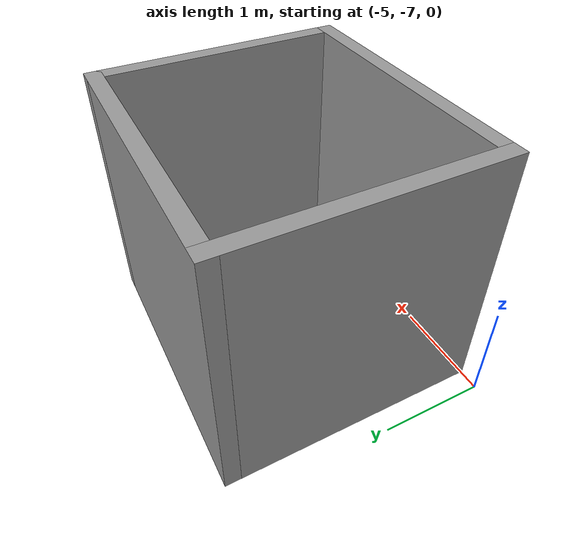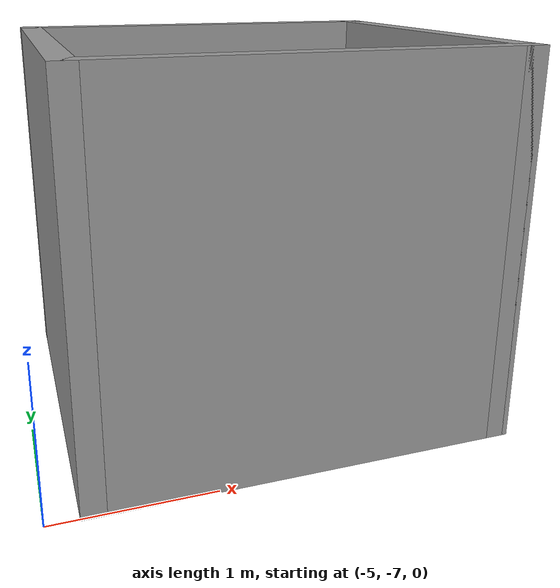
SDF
<?xml version='1.0'?>
<sdf version='1.7'>
  <model name='testtt'>
    <pose>-2.4025 -3.5075 0 0 -0 0</pose>
    <link name='Wall_15'>
      <collision name='Wall_15_Collision'>
        <geometry>
          <box>
            <size>2.5 0.15 2.5</size>
          </box>
        </geometry>
        <pose>0 0 1.25 0 -0 0</pose>
      </collision>
      <visual name='Wall_15_Visual'>
        <pose>0 0 1.25 0 -0 0</pose>
        <geometry>
          <box>
            <size>2.5 0.15 2.5</size>
          </box>
        </geometry>
        <material>
          <script>
            <uri>file://media/materials/scripts/gazebo.material</uri>
            <name>Gazebo/Grey</name>
          </script>
          <ambient>1 1 1 1</ambient>
        </material>
        <meta>
          <layer>0</layer>
        </meta>
      </visual>
      <pose>-2.3275 -2.2575 0 0 -0 -1.5708</pose>
    </link>
    <link name='Wall_16'>
      <collision name='Wall_16_Collision'>
        <geometry>
          <box>
            <size>2.75 0.15 2.5</size>
          </box>
        </geometry>
        <pose>0 0 1.25 0 -0 0</pose>
      </collision>
      <visual name='Wall_16_Visual'>
        <pose>0 0 1.25 0 -0 0</pose>
        <geometry>
          <box>
            <size>2.75 0.15 2.5</size>
          </box>
        </geometry>
        <material>
          <script>
            <uri>file://media/materials/scripts/gazebo.material</uri>
            <name>Gazebo/Grey</name>
          </script>
          <ambient>1 1 1 1</ambient>
        </material>
        <meta>
          <layer>0</layer>
        </meta>
      </visual>
      <pose>-1.0275 -3.4325 0 0 -0 0</pose>
    </link>
    <link name='Wall_17'>
      <collision name='Wall_17_Collision'>
        <geometry>
          <box>
            <size>2.5 0.15 2.5</size>
          </box>
        </geometry>
        <pose>0 0 1.25 0 -0 0</pose>
      </collision>
      <visual name='Wall_17_Visual'>
        <pose>0 0 1.25 0 -0 0</pose>
        <geometry>
          <box>
            <size>2.5 0.15 2.5</size>
          </box>
        </geometry>
        <material>
          <script>
            <uri>file://media/materials/scripts/gazebo.material</uri>
            <name>Gazebo/Grey</name>
          </script>
          <ambient>1 1 1 1</ambient>
        </material>
        <meta>
          <layer>0</layer>
        </meta>
      </visual>
      <pose>0.2725 -2.2575 0 0 -0 1.5708</pose>
    </link>
    <link name='Wall_18'>
      <collision name='Wall_18_Collision'>
        <geometry>
          <box>
            <size>2.75 0.15 2.5</size>
          </box>
        </geometry>
        <pose>0 0 1.25 0 -0 0</pose>
      </collision>
      <visual name='Wall_18_Visual'>
        <pose>0 0 1.25 0 -0 0</pose>
        <geometry>
          <box>
            <size>2.75 0.15 2.5</size>
          </box>
        </geometry>
        <material>
          <script>
            <uri>file://media/materials/scripts/gazebo.material</uri>
            <name>Gazebo/Grey</name>
          </script>
          <ambient>1 1 1 1</ambient>
        </material>
        <meta>
          <layer>0</layer>
        </meta>
      </visual>
      <pose>-1.0275 -1.0825 0 0 -0 3.14159</pose>
    </link>
    <static>1</static>
  </model>
</sdf>
